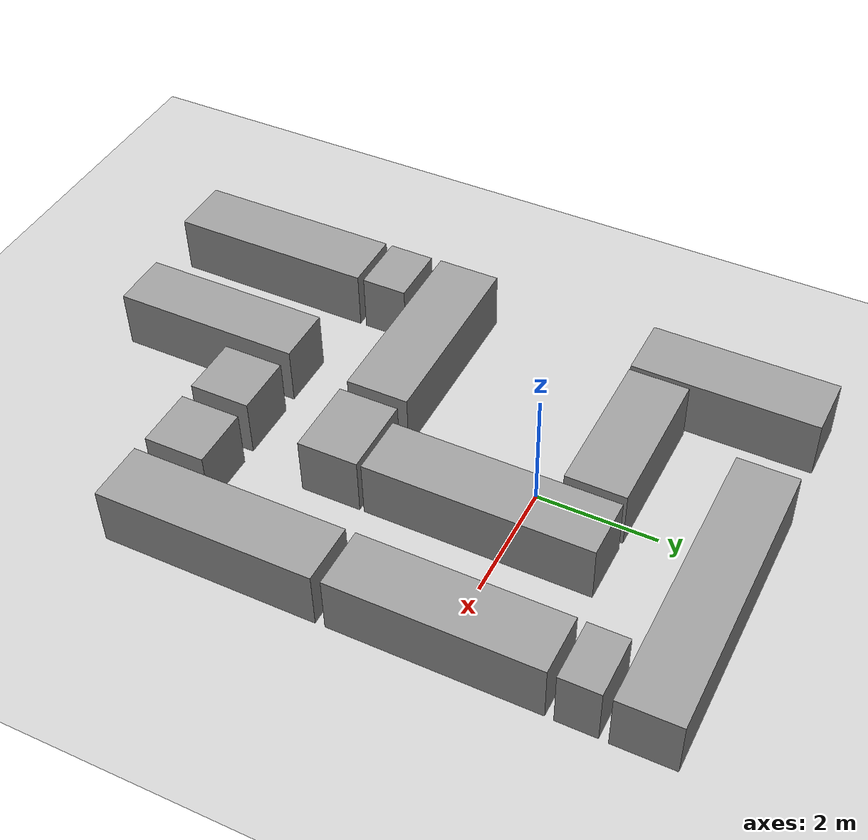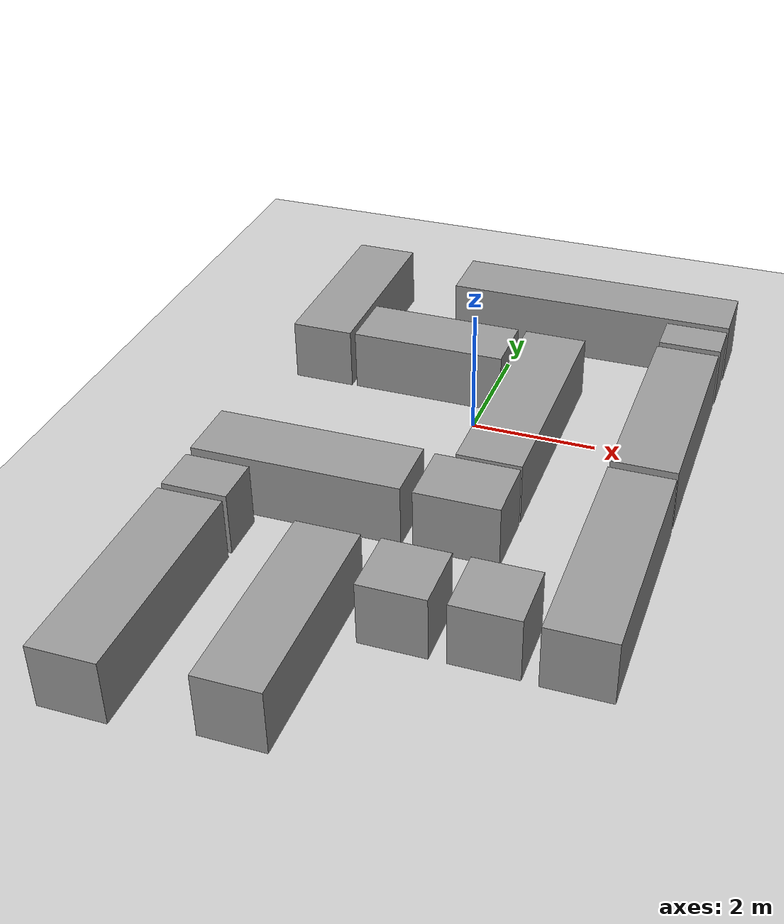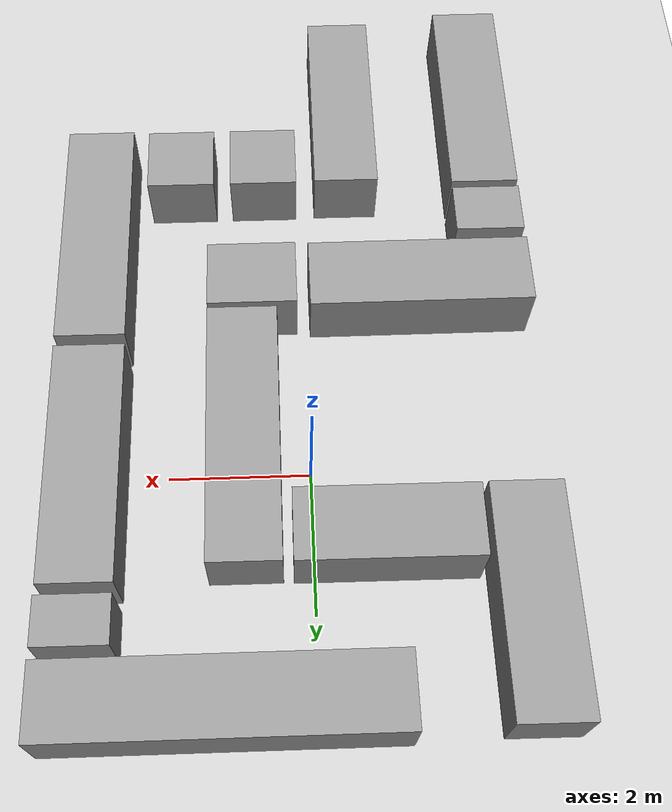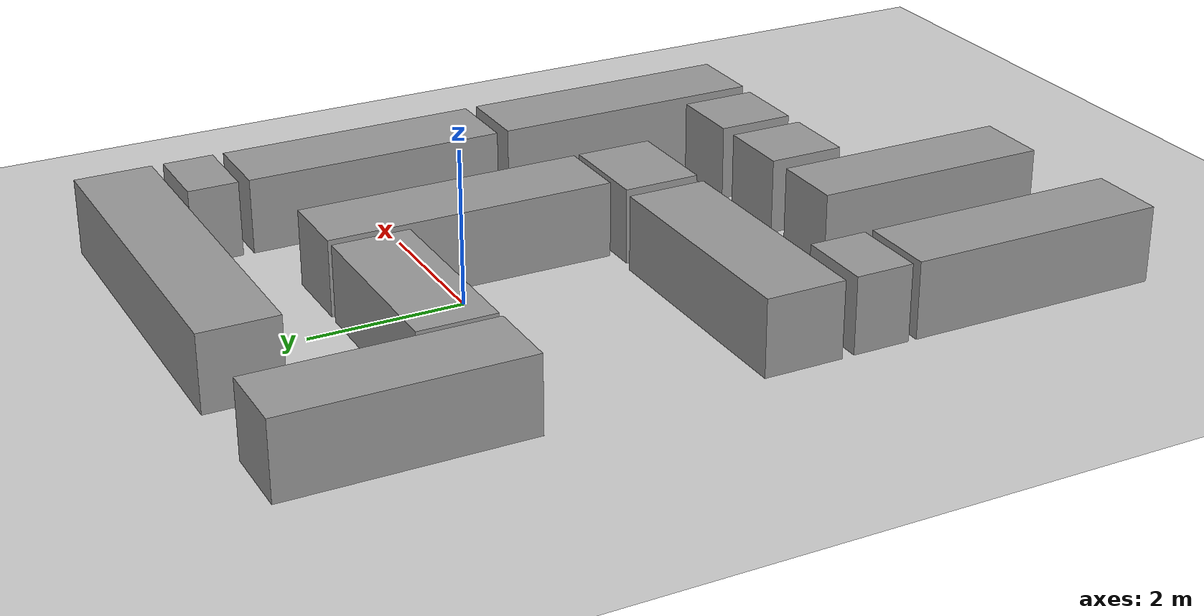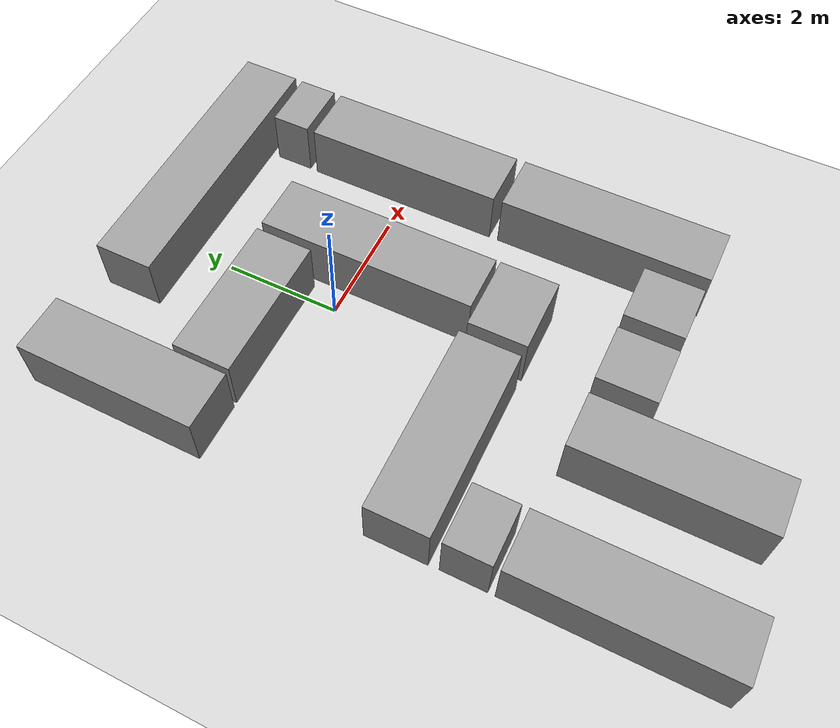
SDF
<sdf version="1.6">
 <world name="default">
  <light name="sun" type="directional">
   <pose>0 0 10 0 -0 0</pose>
   <diffuse>0.8 0.8 0.8 1</diffuse>
   <specular>0.1 0.1 0.1 1</specular>
   <attenuation>
    <range>1000</range>
    <constant>0.9</constant>
    <linear>0.01</linear>
    <quadratic>0.001</quadratic>
   </attenuation>
   <direction>-0.5 0.5 -1</direction>
  </light>
  <model name="ground_plane">
   <static>1</static>
   <link name="link">
    <collision name="collision">
     <geometry><plane><normal>0 0 1</normal><size>100 100</size></plane></geometry>
     <surface><friction><ode><mu>100</mu><mu2>50</mu2></ode></friction></surface>
    </collision>
    <visual name="visual">
     <cast_shadows>0</cast_shadows>
     <geometry><plane><normal>0 0 1</normal><size>100 100</size></plane></geometry>
     <material>
      <script><uri>file://media/materials/scripts/gazebo.material</uri><name>Gazebo/Grey</name></script>
     </material>
    </visual>
   </link>
  </model>
  <gravity>0 0 -9.8</gravity>
  <magnetic_field>6e-06 2.3e-05 -4.2e-05</magnetic_field>
  <atmosphere type="adiabatic"/>
  <physics name="default_physics" default="0" type="ode">
   <max_step_size>0.001</max_step_size>
   <real_time_factor>1</real_time_factor>
   <real_time_update_rate>1000</real_time_update_rate>
  </physics>
  <scene><ambient>0.4 0.4 0.4 1</ambient><background>0.7 0.7 0.7 1</background><shadows>1</shadows></scene>
  <spherical_coordinates>
   <surface_model>EARTH_WGS84</surface_model>
   <latitude_deg>0</latitude_deg>
   <longitude_deg>0</longitude_deg>
   <elevation>0</elevation>
   <heading_deg>0</heading_deg>
  </spherical_coordinates>
  <model name="unit_box_7">
   <pose>3.07461 2.21068 0.5 0 0 -1e-06</pose>
   <link name="link">
    <inertial>
     <mass>1</mass>
     <inertia>
      <ixx>0.166667</ixx>
      <ixy>0</ixy>
      <ixz>0</ixz>
      <iyy>0.166667</iyy>
      <iyz>0</iyz>
      <izz>0.166667</izz>
     </inertia>
    </inertial>
    <collision name="collision"><geometry><box><size>1 0.655237 1</size></box></geometry></collision>
    <visual name="visual">
     <geometry><box><size>1 0.655237 1</size></box></geometry>
     <material>
      <script><name>Gazebo/Grey</name><uri>file://media/materials/scripts/gazebo.material</uri></script>
     </material>
    </visual>
   </link>
  </model>
  <model name="unit_box_8_0_clone">
   <pose>-0.974845 1.0442 0.5 0 0 -1.57287</pose>
   <link name="link">
    <inertial>
     <mass>1</mass>
     <inertia>
      <ixx>0.166667</ixx>
      <ixy>0</ixy>
      <ixz>0</ixz>
      <iyy>0.166667</iyy>
      <iyz>0</iyz>
      <izz>0.166667</izz>
     </inertia>
    </inertial>
    <collision name="collision"><geometry><box><size>0.998557 2.50996 1</size></box></geometry></collision>
    <visual name="visual">
     <geometry><box><size>0.998557 2.50996 1</size></box></geometry>
     <material>
      <script><name>Gazebo/Grey</name><uri>file://media/materials/scripts/gazebo.material</uri></script>
     </material>
    </visual>
   </link>
  </model>
  <model name="unit_box_8_0_clone_0">
   <pose>3.07079 -3.60718 0.499986 -8e-06 0 0</pose>
   <link name="link">
    <inertial>
     <mass>1</mass>
     <inertia>
      <ixx>0.166667</ixx>
      <ixy>0</ixy>
      <ixz>0</ixz>
      <iyy>0.166667</iyy>
      <iyz>0</iyz>
      <izz>0.166667</izz>
     </inertia>
    </inertial>
    <collision name="collision"><geometry><box><size>1 3.58261 1</size></box></geometry></collision>
    <visual name="visual">
     <geometry><box><size>1 3.58261 1</size></box></geometry>
     <material>
      <script><name>Gazebo/Grey</name><uri>file://media/materials/scripts/gazebo.material</uri></script>
     </material>
    </visual>
   </link>
  </model>
  <model name="unit_box_8_0_clone_1">
   <pose>-1.67953 -2.75318 0.5 0 -1e-06 -1.56737</pose>
   <link name="link">
    <inertial>
     <mass>1</mass>
     <inertia>
      <ixx>0.166667</ixx>
      <ixy>0</ixy>
      <ixz>0</ixz>
      <iyy>0.166667</iyy>
      <iyz>0</iyz>
      <izz>0.166667</izz>
     </inertia>
    </inertial>
    <collision name="collision"><geometry><box><size>1.0383 3.23361 1</size></box></geometry></collision>
    <visual name="visual">
     <geometry><box><size>1.0383 3.23361 1</size></box></geometry>
     <material>
      <script><name>Gazebo/Grey</name><uri>file://media/materials/scripts/gazebo.material</uri></script>
     </material>
    </visual>
   </link>
  </model>
  <model name="unit_box_2_clone">
   <pose>0.773861 -2.78453 0.499999 2e-06 -0 0.002425</pose>
   <link name="link">
    <inertial>
     <mass>1</mass>
     <inertia>
      <ixx>0.166667</ixx>
      <ixy>0</ixy>
      <ixz>0</ixz>
      <iyy>0.166667</iyy>
      <iyz>0</iyz>
      <izz>0.166667</izz>
     </inertia>
    </inertial>
    <collision name="collision"><geometry><box><size>1.29208 0.999292 1</size></box></geometry></collision>
    <visual name="visual">
     <geometry><box><size>1.29208 0.999292 1</size></box></geometry>
     <material>
      <script><name>Gazebo/Grey</name><uri>file://media/materials/scripts/gazebo.material</uri></script>
     </material>
    </visual>
   </link>
  </model>
  <model name="unit_box_2_clone_0">
   <pose>0.58187 -4.87423 0.499999 2e-06 0 -1e-06</pose>
   <link name="link">
    <inertial>
     <mass>1</mass>
     <inertia>
      <ixx>0.166667</ixx>
      <ixy>0</ixy>
      <ixz>0</ixz>
      <iyy>0.166667</iyy>
      <iyz>0</iyz>
      <izz>0.166667</izz>
     </inertia>
    </inertial>
    <collision name="collision"><geometry><box><size>1 1 1</size></box></geometry></collision>
    <visual name="visual">
     <geometry><box><size>1 1 1</size></box></geometry>
     <material>
      <script><name>Gazebo/Grey</name><uri>file://media/materials/scripts/gazebo.material</uri></script>
     </material>
    </visual>
   </link>
  </model>
  <model name="unit_box_2_clone_1">
   <pose>-2.78214 -3.82284 0.499999 -0 -2e-06 1e-06</pose>
   <link name="link">
    <inertial>
     <mass>1</mass>
     <inertia>
      <ixx>0.166667</ixx>
      <ixy>0</ixy>
      <ixz>0</ixz>
      <iyy>0.166667</iyy>
      <iyz>0</iyz>
      <izz>0.166667</izz>
     </inertia>
    </inertial>
    <collision name="collision"><geometry><box><size>1 0.756541 1</size></box></geometry></collision>
    <visual name="visual">
     <geometry><box><size>1 0.756541 1</size></box></geometry>
     <material>
      <script><name>Gazebo/Grey</name><uri>file://media/materials/scripts/gazebo.material</uri></script>
     </material>
    </visual>
   </link>
  </model>
  <model name="unit_box_2_clone_2">
   <pose>1.83487 -4.87223 0.499999 2e-06 0 -1e-06</pose>
   <link name="link">
    <inertial>
     <mass>1</mass>
     <inertia>
      <ixx>0.166667</ixx>
      <ixy>0</ixy>
      <ixz>0</ixz>
      <iyy>0.166667</iyy>
      <iyz>0</iyz>
      <izz>0.166667</izz>
     </inertia>
    </inertial>
    <collision name="collision"><geometry><box><size>1 1 1</size></box></geometry></collision>
    <visual name="visual">
     <geometry><box><size>1 1 1</size></box></geometry>
     <material>
      <script><name>Gazebo/Grey</name><uri>file://media/materials/scripts/gazebo.material</uri></script>
     </material>
    </visual>
   </link>
  </model>
  <model name="unit_box_8_0_clone_1_clone">
   <pose>-2.78241 -6.01306 0.499995 3e-06 -0 0</pose>
   <link name="link">
    <inertial>
     <mass>1</mass>
     <inertia>
      <ixx>0.166667</ixx>
      <ixy>0</ixy>
      <ixz>0</ixz>
      <iyy>0.166667</iyy>
      <iyz>0</iyz>
      <izz>0.166667</izz>
     </inertia>
    </inertial>
    <collision name="collision"><geometry><box><size>1 3.40701 1</size></box></geometry></collision>
    <visual name="visual">
     <geometry><box><size>1 3.40701 1</size></box></geometry>
     <material>
      <script><name>Gazebo/Grey</name><uri>file://media/materials/scripts/gazebo.material</uri></script>
     </material>
    </visual>
   </link>
  </model>
  <model name="unit_box_8_0_clone_1_clone_0">
   <pose>-0.680963 -5.96295 0.499995 3e-06 -0 0</pose>
   <link name="link">
    <inertial>
     <mass>1</mass>
     <inertia>
      <ixx>0.166667</ixx>
      <ixy>0</ixy>
      <ixz>0</ixz>
      <iyy>0.166667</iyy>
      <iyz>0</iyz>
      <izz>0.166667</izz>
     </inertia>
    </inertial>
    <collision name="collision"><geometry><box><size>0.958553 3.14374 1</size></box></geometry></collision>
    <visual name="visual">
     <geometry><box><size>0.958553 3.14374 1</size></box></geometry>
     <material>
      <script><name>Gazebo/Grey</name><uri>file://media/materials/scripts/gazebo.material</uri></script>
     </material>
    </visual>
   </link>
  </model>
  <model name="unit_box_8_0_clone_clone">
   <pose>0.919257 -0.338446 0.499962 2e-05 -0 0</pose>
   <link name="link">
    <inertial>
     <mass>1</mass>
     <inertia>
      <ixx>0.166667</ixx>
      <ixy>0</ixy>
      <ixz>0</ixz>
      <iyy>0.166667</iyy>
      <iyz>0</iyz>
      <izz>0.166667</izz>
     </inertia>
    </inertial>
    <collision name="collision"><geometry><box><size>1 3.74342 0.999997</size></box></geometry></collision>
    <visual name="visual">
     <geometry><box><size>1 3.74342 0.999997</size></box></geometry>
     <material>
      <script><name>Gazebo/Grey</name><uri>file://media/materials/scripts/gazebo.material</uri></script>
     </material>
    </visual>
   </link>
  </model>
  <model name="unit_box_8_0_clone_clone_0">
   <pose>3.06529 0.041972 0.499995 -3e-06 0 0</pose>
   <link name="link">
    <inertial>
     <mass>1</mass>
     <inertia>
      <ixx>0.166667</ixx>
      <ixy>0</ixy>
      <ixz>0</ixz>
      <iyy>0.166667</iyy>
      <iyz>0</iyz>
      <izz>0.166667</izz>
     </inertia>
    </inertial>
    <collision name="collision"><geometry><box><size>0.999995 3.40701 1</size></box></geometry></collision>
    <visual name="visual">
     <geometry><box><size>0.999995 3.40701 1</size></box></geometry>
     <material>
      <script><name>Gazebo/Grey</name><uri>file://media/materials/scripts/gazebo.material</uri></script>
     </material>
    </visual>
   </link>
  </model>
  <model name="unit_box_8_0_clone_clone_1">
   <pose>1.2032 3.17849 0.49986 -5.7e-05 -0 -1.56903</pose>
   <link name="link">
    <inertial>
     <mass>1</mass>
     <inertia>
      <ixx>0.166667</ixx>
      <ixy>0</ixy>
      <ixz>0</ixz>
      <iyy>0.166667</iyy>
      <iyz>0</iyz>
      <izz>0.166667</izz>
     </inertia>
    </inertial>
    <collision name="collision"><geometry><box><size>0.999234 4.7586 0.999981</size></box></geometry></collision>
    <visual name="visual">
     <geometry><box><size>0.999234 4.7586 0.999981</size></box></geometry>
     <material>
      <script><name>Gazebo/Grey</name><uri>file://media/materials/scripts/gazebo.material</uri></script>
     </material>
    </visual>
   </link>
  </model>
  <model name="unit_box_8_0_clone_clone_2">
   <pose>-2.81109 2.08523 0.499999 0 1e-06 -0.001606</pose>
   <link name="link">
    <inertial>
     <mass>1</mass>
     <inertia>
      <ixx>0.166667</ixx>
      <ixy>0</ixy>
      <ixz>0</ixz>
      <iyy>0.166667</iyy>
      <iyz>0</iyz>
      <izz>0.166667</izz>
     </inertia>
    </inertial>
    <collision name="collision"><geometry><box><size>1 3.08753 1</size></box></geometry></collision>
    <visual name="visual">
     <geometry><box><size>1 3.08753 1</size></box></geometry>
     <material>
      <script><name>Gazebo/Grey</name><uri>file://media/materials/scripts/gazebo.material</uri></script>
     </material>
    </visual>
   </link>
  </model>
 </world>
</sdf>
